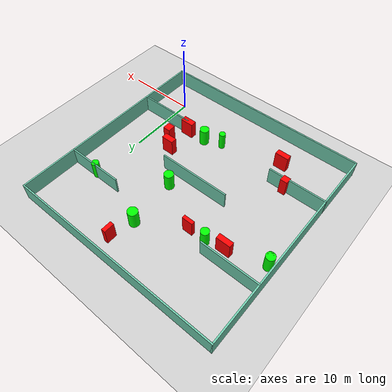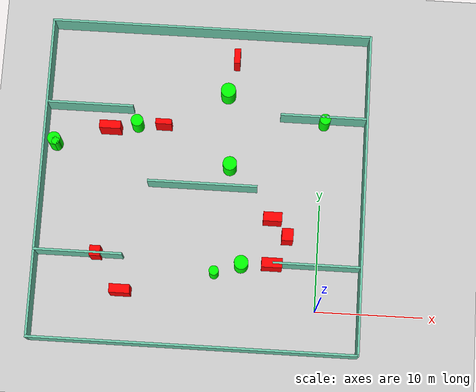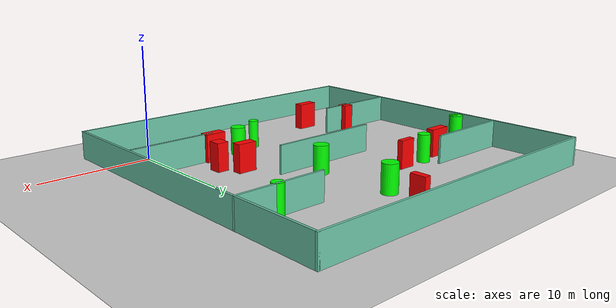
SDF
<sdf version="1.7">
 <world name="default">
  <light name="sun" type="directional">
   <pose>0 0 10 0 -0 0</pose>
   <diffuse>0.8 0.8 0.8 1</diffuse>
   <specular>0.2 0.2 0.2 1</specular>
   <attenuation>
    <range>1000</range>
    <constant>0.9</constant>
    <linear>0.01</linear>
    <quadratic>0.001</quadratic>
   </attenuation>
   <direction>-0.5 0.1 -0.9</direction>
   <spot><inner_angle>0</inner_angle><outer_angle>0</outer_angle><falloff>0</falloff></spot>
  </light>
  <model name="ground_plane">
   <static>1</static>
   <link name="link">
    <collision name="collision">
     <geometry><plane><normal>0 0 1</normal><size>100 100</size></plane></geometry>
     <surface>
      <contact><collide_bitmask>65535</collide_bitmask></contact>
      <friction><ode><mu>100</mu><mu2>50</mu2></ode></friction>
     </surface>
    </collision>
    <visual name="visual">
     <cast_shadows>0</cast_shadows>
     <geometry><plane><normal>0 0 1</normal><size>100 100</size></plane></geometry>
     <material>
      <script><uri>file://media/materials/scripts/gazebo.material</uri><name>Gazebo/Grey</name></script>
     </material>
    </visual>
   </link>
  </model>
  <gravity>0 0 -9.8</gravity>
  <magnetic_field>6e-06 2.3e-05 -4.2e-05</magnetic_field>
  <atmosphere type="adiabatic"/>
  <physics type="ode">
   <max_step_size>0.001</max_step_size>
   <real_time_factor>1</real_time_factor>
   <real_time_update_rate>1000</real_time_update_rate>
  </physics>
  <scene><ambient>0.4 0.4 0.4 1</ambient><background>0.7 0.7 0.7 1</background><shadows>1</shadows></scene>
  <spherical_coordinates>
   <surface_model>EARTH_WGS84</surface_model>
   <latitude_deg>0</latitude_deg>
   <longitude_deg>0</longitude_deg>
   <elevation>0</elevation>
   <heading_deg>0</heading_deg>
  </spherical_coordinates>
  <model name="my_base_walls">
   <link name="Wall_10">
    <collision name="Wall_10_Collision">
     <geometry><box><size>8.2 0.2 2.5</size></box></geometry>
     <pose>0 0 1.25 0 -0 0</pose>
    </collision>
    <visual name="Wall_10_Visual">
     <pose>0 0 1.25 0 -0 0</pose>
     <geometry><box><size>8.2 0.2 2.5</size></box></geometry>
     <material>
      <script><uri>file://media/materials/scripts/gazebo.material</uri><name>Gazebo/Grey</name></script>
      <ambient>0.435294 0.796078 0.67451 1</ambient>
     </material>
     <meta><layer>0</layer></meta>
    </visual>
    <pose>-11 -7 0 0 -0 0</pose>
   </link>
   <link name="Wall_12">
    <collision name="Wall_12_Collision">
     <geometry><box><size>8.2 0.2 2.5</size></box></geometry>
     <pose>0 0 1.25 0 -0 0</pose>
    </collision>
    <visual name="Wall_12_Visual">
     <pose>0 0 1.25 0 -0 0</pose>
     <geometry><box><size>8.2 0.2 2.5</size></box></geometry>
     <material>
      <script><uri>file://media/materials/scripts/gazebo.material</uri><name>Gazebo/Grey</name></script>
      <ambient>0.435294 0.796078 0.67451 1</ambient>
     </material>
     <meta><layer>0</layer></meta>
    </visual>
    <pose>-11 7 0 0 -0 0</pose>
   </link>
   <link name="Wall_14">
    <collision name="Wall_14_Collision">
     <geometry><box><size>8.2 0.2 2.5</size></box></geometry>
     <pose>0 0 1.25 0 -0 0</pose>
    </collision>
    <visual name="Wall_14_Visual">
     <pose>0 0 1.25 0 -0 0</pose>
     <geometry><box><size>8.2 0.2 2.5</size></box></geometry>
     <material>
      <script><uri>file://media/materials/scripts/gazebo.material</uri><name>Gazebo/Grey</name></script>
      <ambient>0.435294 0.796078 0.67451 1</ambient>
     </material>
     <meta><layer>0</layer></meta>
    </visual>
    <pose>11 7 0 0 -0 3.14159</pose>
   </link>
   <link name="Wall_16">
    <collision name="Wall_16_Collision">
     <geometry><box><size>10.2 0.2 2.5</size></box></geometry>
     <pose>0 0 1.25 0 -0 0</pose>
    </collision>
    <visual name="Wall_16_Visual">
     <pose>0 0 1.25 0 -0 0</pose>
     <geometry><box><size>10.2 0.2 2.5</size></box></geometry>
     <material>
      <script><uri>file://media/materials/scripts/gazebo.material</uri><name>Gazebo/Grey</name></script>
      <ambient>0.435294 0.796078 0.67451 1</ambient>
     </material>
     <meta><layer>0</layer></meta>
    </visual>
    <pose>0 0 0 0 -0 3.14159</pose>
   </link>
   <link name="Wall_2">
    <collision name="Wall_2_Collision">
     <geometry><box><size>30.2 0.2 2.5</size></box></geometry>
     <pose>0 0 1.25 0 -0 0</pose>
    </collision>
    <visual name="Wall_2_Visual">
     <pose>0 0 1.25 0 -0 0</pose>
     <geometry><box><size>30.2 0.2 2.5</size></box></geometry>
     <material>
      <script><uri>file://media/materials/scripts/gazebo.material</uri><name>Gazebo/Grey</name></script>
      <ambient>0.435294 0.796078 0.67451 1</ambient>
     </material>
     <meta><layer>0</layer></meta>
    </visual>
    <pose>0 -15 0 0 -0 3.14159</pose>
   </link>
   <link name="Wall_3">
    <collision name="Wall_3_Collision">
     <geometry><box><size>30.2 0.2 2.5</size></box></geometry>
     <pose>0 0 1.25 0 -0 0</pose>
    </collision>
    <visual name="Wall_3_Visual">
     <pose>0 0 1.25 0 -0 0</pose>
     <geometry><box><size>30.2 0.2 2.5</size></box></geometry>
     <material>
      <script><uri>file://media/materials/scripts/gazebo.material</uri><name>Gazebo/Grey</name></script>
      <ambient>0.435294 0.796078 0.67451 1</ambient>
     </material>
     <meta><layer>0</layer></meta>
    </visual>
    <pose>-15 0 0 0 -0 1.5708</pose>
   </link>
   <link name="Wall_4">
    <collision name="Wall_4_Collision">
     <geometry><box><size>30.2 0.2 2.5</size></box></geometry>
     <pose>0 0 1.25 0 -0 0</pose>
    </collision>
    <visual name="Wall_4_Visual">
     <pose>0 0 1.25 0 -0 0</pose>
     <geometry><box><size>30.2 0.2 2.5</size></box></geometry>
     <material>
      <script><uri>file://media/materials/scripts/gazebo.material</uri><name>Gazebo/Grey</name></script>
      <ambient>0.435294 0.796078 0.67451 1</ambient>
     </material>
     <meta><layer>0</layer></meta>
    </visual>
    <pose>0 15 0 0 -0 0</pose>
   </link>
   <link name="Wall_6">
    <collision name="Wall_6_Collision">
     <geometry><box><size>30.2 0.2 2.5</size></box></geometry>
     <pose>0 0 1.25 0 -0 0</pose>
    </collision>
    <visual name="Wall_6_Visual">
     <pose>0 0 1.25 0 -0 0</pose>
     <geometry><box><size>30.2 0.2 2.5</size></box></geometry>
     <material>
      <script><uri>file://media/materials/scripts/gazebo.material</uri><name>Gazebo/Grey</name></script>
      <ambient>0.435294 0.796078 0.67451 1</ambient>
     </material>
     <meta><layer>0</layer></meta>
    </visual>
    <pose>15 0 0 0 -0 1.5708</pose>
   </link>
   <link name="Wall_8">
    <collision name="Wall_8_Collision">
     <geometry><box><size>8.2 0.2 2.5</size></box></geometry>
     <pose>0 0 1.25 0 -0 0</pose>
    </collision>
    <visual name="Wall_8_Visual">
     <pose>0 0 1.25 0 -0 0</pose>
     <geometry><box><size>8.2 0.2 2.5</size></box></geometry>
     <material>
      <script><uri>file://media/materials/scripts/gazebo.material</uri><name>Gazebo/Grey</name></script>
      <ambient>0.435294 0.796078 0.67451 1</ambient>
     </material>
     <meta><layer>0</layer></meta>
    </visual>
    <pose>11 -7 0 0 -0 3.14159</pose>
   </link>
   <static>1</static>
   <pose>-11 11 0 0 -0 0</pose>
  </model>
  <model name="cylinder1">
   <static>1</static>
   <link name="link">
    <inertial>
     <mass>1</mass>
     <inertia><ixx>0.5</ixx><ixy>0</ixy><ixz>0</ixz><iyy>0.5</iyy><iyz>0</iyz><izz>1</izz></inertia>
    </inertial>
    <collision name="collision">
     <geometry><cylinder><radius>0.5714349626297197</radius><length>2.5</length></cylinder></geometry>
    </collision>
    <visual name="visual">
     <geometry><cylinder><radius>0.5714349626297197</radius><length>2.5</length></cylinder></geometry>
     <material>
      <ambient>0 1 0 1</ambient>
      <diffuse>0 1 0 1</diffuse>
      <specular>0.1 0.1 0.1 1</specular>
      <emissive>0 0 0 0</emissive>
     </material>
    </visual>
   </link>
   <pose>-17.459490396176697 16.64264471814681 1.25 0 0 0</pose>
  </model>
  <model name="cylinder2">
   <static>1</static>
   <link name="link">
    <inertial>
     <mass>1</mass>
     <inertia><ixx>0.5</ixx><ixy>0</ixy><ixz>0</ixz><iyy>0.5</iyy><iyz>0</iyz><izz>1</izz></inertia>
    </inertial>
    <collision name="collision">
     <geometry><cylinder><radius>0.5120450657433622</radius><length>2.5</length></cylinder></geometry>
    </collision>
    <visual name="visual">
     <geometry><cylinder><radius>0.5120450657433622</radius><length>2.5</length></cylinder></geometry>
     <material>
      <ambient>0 1 0 1</ambient>
      <diffuse>0 1 0 1</diffuse>
      <specular>0.1 0.1 0.1 1</specular>
      <emissive>0 0 0 0</emissive>
     </material>
    </visual>
   </link>
   <pose>0.07468690951136381 17.758296917498424 1.25 0 0 0</pose>
  </model>
  <model name="cylinder3">
   <static>1</static>
   <link name="link">
    <inertial>
     <mass>1</mass>
     <inertia><ixx>0.5</ixx><ixy>0</ixy><ixz>0</ixz><iyy>0.5</iyy><iyz>0</iyz><izz>1</izz></inertia>
    </inertial>
    <collision name="collision">
     <geometry><cylinder><radius>0.6107107839545188</radius><length>2.5</length></cylinder></geometry>
    </collision>
    <visual name="visual">
     <geometry><cylinder><radius>0.6107107839545188</radius><length>2.5</length></cylinder></geometry>
     <material>
      <ambient>0 1 0 1</ambient>
      <diffuse>0 1 0 1</diffuse>
      <specular>0.1 0.1 0.1 1</specular>
      <emissive>0 0 0 0</emissive>
     </material>
    </visual>
   </link>
   <pose>-25.041907985004976 14.476134437981287 1.25 0 0 0</pose>
  </model>
  <model name="cylinder4">
   <static>1</static>
   <link name="link">
    <inertial>
     <mass>1</mass>
     <inertia><ixx>0.5</ixx><ixy>0</ixy><ixz>0</ixz><iyy>0.5</iyy><iyz>0</iyz><izz>1</izz></inertia>
    </inertial>
    <collision name="collision">
     <geometry><cylinder><radius>0.6567387390194592</radius><length>2.5</length></cylinder></geometry>
    </collision>
    <visual name="visual">
     <geometry><cylinder><radius>0.6567387390194592</radius><length>2.5</length></cylinder></geometry>
     <material>
      <ambient>0 1 0 1</ambient>
      <diffuse>0 1 0 1</diffuse>
      <specular>0.1 0.1 0.1 1</specular>
      <emissive>0 0 0 0</emissive>
     </material>
    </visual>
   </link>
   <pose>-6.983799160808145 3.8485487206154048 1.25 0 0 0</pose>
  </model>
  <model name="cylinder5">
   <static>1</static>
   <link name="link">
    <inertial>
     <mass>1</mass>
     <inertia><ixx>0.5</ixx><ixy>0</ixy><ixz>0</ixz><iyy>0.5</iyy><iyz>0</iyz><izz>1</izz></inertia>
    </inertial>
    <collision name="collision">
     <geometry><cylinder><radius>0.44297315669850645</radius><length>2.5</length></cylinder></geometry>
    </collision>
    <visual name="visual">
     <geometry><cylinder><radius>0.44297315669850645</radius><length>2.5</length></cylinder></geometry>
     <material>
      <ambient>0 1 0 1</ambient>
      <diffuse>0 1 0 1</diffuse>
      <specular>0.1 0.1 0.1 1</specular>
      <emissive>0 0 0 0</emissive>
     </material>
    </visual>
   </link>
   <pose>-9.434271134866947 2.9540926207422995 1.25 0 0 0</pose>
  </model>
  <model name="cylinder6">
   <static>1</static>
   <link name="link">
    <inertial>
     <mass>1</mass>
     <inertia><ixx>0.5</ixx><ixy>0</ixy><ixz>0</ixz><iyy>0.5</iyy><iyz>0</iyz><izz>1</izz></inertia>
    </inertial>
    <collision name="collision">
     <geometry><cylinder><radius>0.6969180183742447</radius><length>2.5</length></cylinder></geometry>
    </collision>
    <visual name="visual">
     <geometry><cylinder><radius>0.6969180183742447</radius><length>2.5</length></cylinder></geometry>
     <material>
      <ambient>0 1 0 1</ambient>
      <diffuse>0 1 0 1</diffuse>
      <specular>0.1 0.1 0.1 1</specular>
      <emissive>0 0 0 0</emissive>
     </material>
    </visual>
   </link>
   <pose>-9.11841815925224 20.051521691027162 1.25 0 0 0</pose>
  </model>
  <model name="cylinder7">
   <static>1</static>
   <link name="link">
    <inertial>
     <mass>1</mass>
     <inertia><ixx>0.5</ixx><ixy>0</ixy><ixz>0</ixz><iyy>0.5</iyy><iyz>0</iyz><izz>1</izz></inertia>
    </inertial>
    <collision name="collision">
     <geometry><cylinder><radius>0.6541204518556527</radius><length>2.5</length></cylinder></geometry>
    </collision>
    <visual name="visual">
     <geometry><cylinder><radius>0.6541204518556527</radius><length>2.5</length></cylinder></geometry>
     <material>
      <ambient>0 1 0 1</ambient>
      <diffuse>0 1 0 1</diffuse>
      <specular>0.1 0.1 0.1 1</specular>
      <emissive>0 0 0 0</emissive>
     </material>
    </visual>
   </link>
   <pose>-8.571278851892984 13.031876455315945 1.25 0 0 0</pose>
  </model>
  <model name="cylinder8">
   <static>1</static>
   <link name="link">
    <inertial>
     <mass>1</mass>
     <inertia><ixx>0.5</ixx><ixy>0</ixy><ixz>0</ixz><iyy>0.5</iyy><iyz>0</iyz><izz>1</izz></inertia>
    </inertial>
    <collision name="collision">
     <geometry><cylinder><radius>0.3754982126459696</radius><length>2.5</length></cylinder></geometry>
    </collision>
    <visual name="visual">
     <geometry><cylinder><radius>0.3754982126459696</radius><length>2.5</length></cylinder></geometry>
     <material>
      <ambient>0 1 0 1</ambient>
      <diffuse>0 1 0 1</diffuse>
      <specular>0.1 0.1 0.1 1</specular>
      <emissive>0 0 0 0</emissive>
     </material>
    </visual>
   </link>
   <pose>-24.887060559564144 14.25779987369582 1.25 0 0 0</pose>
  </model>
  <model name="box1">
   <static>1</static>
   <link name="link">
    <inertial>
     <mass>1</mass>
     <inertia><ixx>0.083</ixx><ixy>0</ixy><ixz>0</ixz><iyy>0.083</iyy><iyz>0</iyz><izz>0.083</izz></inertia>
    </inertial>
    <collision name="collision">
     <geometry><box><size>1.8971611621927578 0.8946097280643988 2.5</size></box></geometry>
    </collision>
    <visual name="visual">
     <geometry><box><size>1.8971611621927578 0.8946097280643988 2.5</size></box></geometry>
     <material>
      <ambient>1 0 0 1</ambient>
      <diffuse>1 0 0 1</diffuse>
      <specular>0.1 0.1 0.1 1</specular>
      <emissive>0 0 0 0</emissive>
     </material>
    </visual>
    <sensor name="my_contact" type="contact">
     <contact><collision>box_collision</collision><topic>__default_topic__</topic></contact>
    </sensor>
   </link>
   <pose>-4.177496706127426 3.989973205911248 1.25 0 0 0</pose>
  </model>
  <model name="box2">
   <static>1</static>
   <link name="link">
    <inertial>
     <mass>1</mass>
     <inertia><ixx>0.083</ixx><ixy>0</ixy><ixz>0</ixz><iyy>0.083</iyy><iyz>0</iyz><izz>0.083</izz></inertia>
    </inertial>
    <collision name="collision">
     <geometry><box><size>0.9815567018421577 0.9461568392411275 2.5</size></box></geometry>
    </collision>
    <visual name="visual">
     <geometry><box><size>0.9815567018421577 0.9461568392411275 2.5</size></box></geometry>
     <material>
      <ambient>1 0 0 1</ambient>
      <diffuse>1 0 0 1</diffuse>
      <specular>0.1 0.1 0.1 1</specular>
      <emissive>0 0 0 0</emissive>
     </material>
    </visual>
    <sensor name="my_contact" type="contact">
     <contact><collision>box_collision</collision><topic>__default_topic__</topic></contact>
    </sensor>
   </link>
   <pose>-20.400186654955252 4.159061074100723 1.25 0 0 0</pose>
  </model>
  <model name="box3">
   <static>1</static>
   <link name="link">
    <inertial>
     <mass>1</mass>
     <inertia><ixx>0.083</ixx><ixy>0</ixy><ixz>0</ixz><iyy>0.083</iyy><iyz>0</iyz><izz>0.083</izz></inertia>
    </inertial>
    <collision name="collision">
     <geometry><box><size>1.9830027411579179 0.749275867903669 2.5</size></box></geometry>
    </collision>
    <visual name="visual">
     <geometry><box><size>1.9830027411579179 0.749275867903669 2.5</size></box></geometry>
     <material>
      <ambient>1 0 0 1</ambient>
      <diffuse>1 0 0 1</diffuse>
      <specular>0.1 0.1 0.1 1</specular>
      <emissive>0 0 0 0</emissive>
     </material>
    </visual>
    <sensor name="my_contact" type="contact">
     <contact><collision>box_collision</collision><topic>__default_topic__</topic></contact>
    </sensor>
   </link>
   <pose>-19.932379819582437 16.112938738644882 1.25 0 0 0</pose>
  </model>
  <model name="box4">
   <static>1</static>
   <link name="link">
    <inertial>
     <mass>1</mass>
     <inertia><ixx>0.083</ixx><ixy>0</ixy><ixz>0</ixz><iyy>0.083</iyy><iyz>0</iyz><izz>0.083</izz></inertia>
    </inertial>
    <collision name="collision">
     <geometry><box><size>1.0454018728330188 1.1469178377739255 2.5</size></box></geometry>
    </collision>
    <visual name="visual">
     <geometry><box><size>1.0454018728330188 1.1469178377739255 2.5</size></box></geometry>
     <material>
      <ambient>1 0 0 1</ambient>
      <diffuse>1 0 0 1</diffuse>
      <specular>0.1 0.1 0.1 1</specular>
      <emissive>0 0 0 0</emissive>
     </material>
    </visual>
    <sensor name="my_contact" type="contact">
     <contact><collision>box_collision</collision><topic>__default_topic__</topic></contact>
    </sensor>
   </link>
   <pose>-2.872886962142381 6.668523302323496 1.25 0 0 0</pose>
  </model>
  <model name="box5">
   <static>1</static>
   <link name="link">
    <inertial>
     <mass>1</mass>
     <inertia><ixx>0.083</ixx><ixy>0</ixy><ixz>0</ixz><iyy>0.083</iyy><iyz>0</iyz><izz>0.083</izz></inertia>
    </inertial>
    <collision name="collision">
     <geometry><box><size>0.5816701129510353 1.4233071947152163 2.5</size></box></geometry>
    </collision>
    <visual name="visual">
     <geometry><box><size>0.5816701129510353 1.4233071947152163 2.5</size></box></geometry>
     <material>
      <ambient>1 0 0 1</ambient>
      <diffuse>1 0 0 1</diffuse>
      <specular>0.1 0.1 0.1 1</specular>
      <emissive>0 0 0 0</emissive>
     </material>
    </visual>
    <sensor name="my_contact" type="contact">
     <contact><collision>box_collision</collision><topic>__default_topic__</topic></contact>
    </sensor>
   </link>
   <pose>-8.469223116252358 23.432027467985602 1.25 0 0 0</pose>
  </model>
  <model name="box6">
   <static>1</static>
   <link name="link">
    <inertial>
     <mass>1</mass>
     <inertia><ixx>0.083</ixx><ixy>0</ixy><ixz>0</ixz><iyy>0.083</iyy><iyz>0</iyz><izz>0.083</izz></inertia>
    </inertial>
    <collision name="collision">
     <geometry><box><size>1.499856959145652 0.500764103602529 2.5</size></box></geometry>
    </collision>
    <visual name="visual">
     <geometry><box><size>1.499856959145652 0.500764103602529 2.5</size></box></geometry>
     <material>
      <ambient>1 0 0 1</ambient>
      <diffuse>1 0 0 1</diffuse>
      <specular>0.1 0.1 0.1 1</specular>
      <emissive>0 0 0 0</emissive>
     </material>
    </visual>
    <sensor name="my_contact" type="contact">
     <contact><collision>box_collision</collision><topic>__default_topic__</topic></contact>
    </sensor>
   </link>
   <pose>-14.977391757287865 16.677238069745556 1.25 0 0 0</pose>
  </model>
  <model name="box7">
   <static>1</static>
   <link name="link">
    <inertial>
     <mass>1</mass>
     <inertia><ixx>0.083</ixx><ixy>0</ixy><ixz>0</ixz><iyy>0.083</iyy><iyz>0</iyz><izz>0.083</izz></inertia>
    </inertial>
    <collision name="collision">
     <geometry><box><size>1.886241235460743 0.8037594915485347 2.5</size></box></geometry>
    </collision>
    <visual name="visual">
     <geometry><box><size>1.886241235460743 0.8037594915485347 2.5</size></box></geometry>
     <material>
      <ambient>1 0 0 1</ambient>
      <diffuse>1 0 0 1</diffuse>
      <specular>0.1 0.1 0.1 1</specular>
      <emissive>0 0 0 0</emissive>
     </material>
    </visual>
    <sensor name="my_contact" type="contact">
     <contact><collision>box_collision</collision><topic>__default_topic__</topic></contact>
    </sensor>
   </link>
   <pose>-17.907807788923964 0.8102108663275693 1.25 0 0 0</pose>
  </model>
  <model name="box8">
   <static>1</static>
   <link name="link">
    <inertial>
     <mass>1</mass>
     <inertia><ixx>0.083</ixx><ixy>0</ixy><ixz>0</ixz><iyy>0.083</iyy><iyz>0</iyz><izz>0.083</izz></inertia>
    </inertial>
    <collision name="collision">
     <geometry><box><size>1.734979044025762 0.8641116374777236 2.5</size></box></geometry>
    </collision>
    <visual name="visual">
     <geometry><box><size>1.734979044025762 0.8641116374777236 2.5</size></box></geometry>
     <material>
      <ambient>1 0 0 1</ambient>
      <diffuse>1 0 0 1</diffuse>
      <specular>0.1 0.1 0.1 1</specular>
      <emissive>0 0 0 0</emissive>
     </material>
    </visual>
    <sensor name="my_contact" type="contact">
     <contact><collision>box_collision</collision><topic>__default_topic__</topic></contact>
    </sensor>
   </link>
   <pose>-4.328286015107292 8.253348928617335 1.25 0 0 0</pose>
  </model>
 </world>
</sdf>
